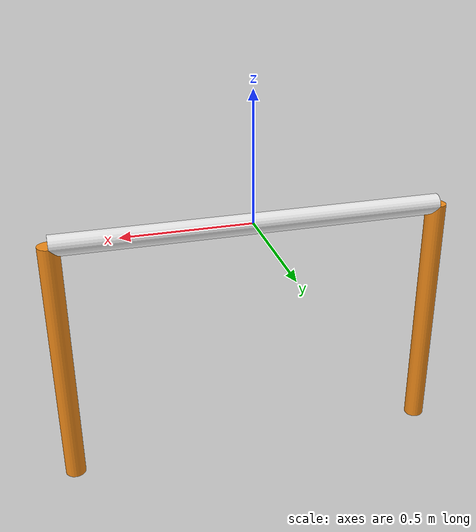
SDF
<?xml version="1.0"?>
<sdf version="1.7">

  <!-- Qualification Gate model (static) -->
  <model name="qualification_gate">
    <static>1</static>

    <!-- Top bar (lies along X, centered at z=0 surface) -->
    <link name="top_bar">
      <pose>0 0 0 0 0 0</pose>
      <inertial>
        <mass>1.0</mass>
        <inertia>
          <ixx>0.01</ixx><ixy>0</ixy><ixz>0</ixz>
          <iyy>0.01</iyy><iyz>0</iyz><izz>0.01</izz>
        </inertia>
      </inertial>

      <visual name="top_bar_visual">
        <pose>0 0 0 0 1.5708 0</pose>
        <geometry>
          <cylinder>
            <radius>0.04</radius>
            <length>1.5</length> <!-- length along X -->
          </cylinder>
        </geometry>
        <material>
          <script>
            <uri>file://media/materials/scripts/gazebo.material</uri>
            <name>Gazebo/White</name>
          </script>
          <ambient>1 1 1 1</ambient>
          <diffuse>1 1 1 1</diffuse>
        </material>
        <cast_shadows>1</cast_shadows>
      </visual>

      <collision name="top_bar_collision">
        <pose>0 0 0 0 1.5708 0</pose>
        <geometry>
          <cylinder>
            <radius>0.04</radius>
            <length>1.5</length> <!-- length along X -->
          </cylinder>
        </geometry>
        <surface>
          <contact>
            <collide_without_contact>0</collide_without_contact>
          </contact>
        </surface>
      </collision>
    </link>

    <!-- Left vertical post (port) -->
    <link name="post_left">
      <!-- center of cylinder is half the length below surface; cylinder length = 1.0 m -->
      <pose>-0.75 0 -0.5 0 0 0</pose>
      <inertial>
        <mass>0.5</mass>
        <inertia>
          <ixx>0.01</ixx><ixy>0</ixy><ixz>0</ixz>
          <iyy>0.01</iyy><iyz>0</iyz><izz>0.01</izz>
        </inertia>
      </inertial>

      <visual name="post_left_visual">
        <pose>0 0 0 0 0 0</pose>
        <geometry>
          <cylinder>
            <radius>0.04</radius>
            <length>1.0</length> <!-- depth (downwards) -->
          </cylinder>
        </geometry>
        <material>
          <script>
            <uri>file://media/materials/scripts/gazebo.material</uri>
            <name>Gazebo/Orange</name>
          </script>
          <ambient>1 0.55 0 1</ambient>
          <diffuse>1 0.55 0 1</diffuse>
        </material>
        <cast_shadows>1</cast_shadows>
      </visual>

      <collision name="post_left_collision">
        <pose>0 0 0 0 0 0</pose>
        <geometry>
          <cylinder>
            <radius>0.04</radius>
            <length>1.0</length>
          </cylinder>
        </geometry>
        <surface>
          <contact>
            <collide_without_contact>0</collide_without_contact>
          </contact>
        </surface>
      </collision>
    </link>

    <!-- Right vertical post (starboard) -->
    <link name="post_right">
      <pose>0.75 0 -0.5 0 0 0</pose>
      <inertial>
        <mass>0.5</mass>
        <inertia>
          <ixx>0.01</ixx><ixy>0</ixy><ixz>0</ixz>
          <iyy>0.01</iyy><iyz>0</iyz><izz>0.01</izz>
        </inertia>
      </inertial>

      <visual name="post_right_visual">
        <pose>0 0 0 0 0 0</pose>
        <geometry>
          <cylinder>
            <radius>0.04</radius>
            <length>1.0</length>
          </cylinder>
        </geometry>
        <material>
          <script>
            <uri>file://media/materials/scripts/gazebo.material</uri>
            <name>Gazebo/Orange</name>
          </script>
          <ambient>1 0.55 0 1</ambient>
          <diffuse>1 0.55 0 1</diffuse>
        </material>
        <cast_shadows>1</cast_shadows>
      </visual>

      <collision name="post_right_collision">
        <pose>0 0 0 0 0 0</pose>
        <geometry>
          <cylinder>
            <radius>0.04</radius>
            <length>1.0</length>
          </cylinder>
        </geometry>
        <surface>
          <contact>
            <collide_without_contact>0</collide_without_contact>
          </contact>
        </surface>
      </collision>
    </link>

    <!-- Fixed joints to hold posts to top_bar -->
    <joint name="top_left_fixed" type="fixed">
      <parent>top_bar</parent>
      <child>post_left</child>
      <pose>-0.75 0 0 0 0 0</pose>
    </joint>

    <joint name="top_right_fixed" type="fixed">
      <parent>top_bar</parent>
      <child>post_right</child>
      <pose>0.75 0 0 0 0 0</pose>
    </joint>

  </model>

</sdf>
